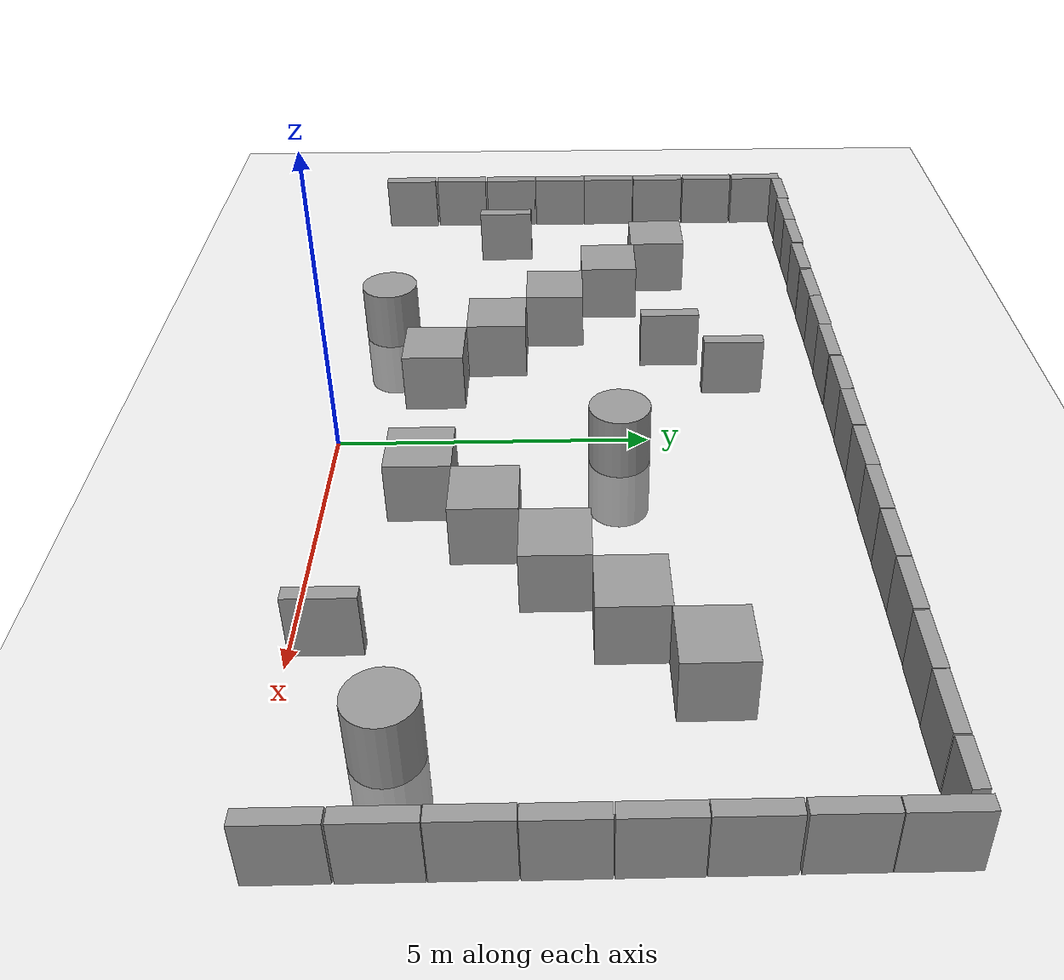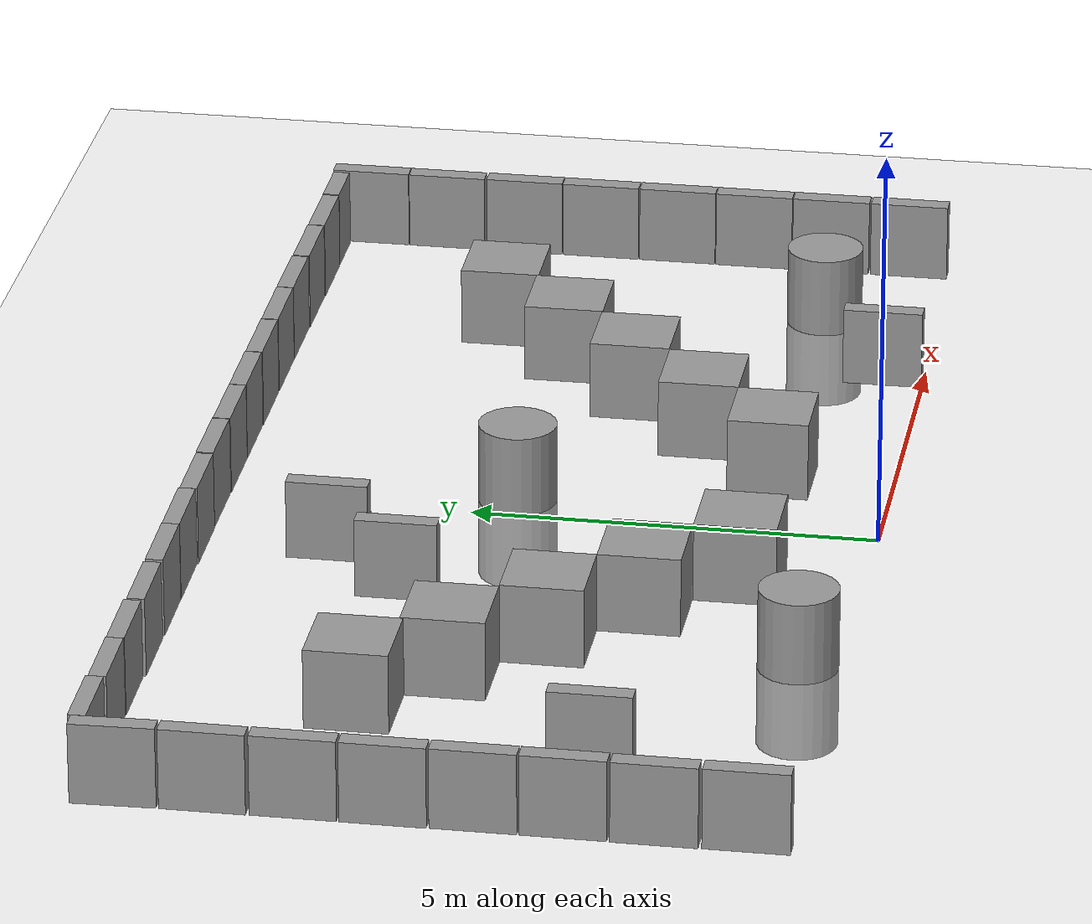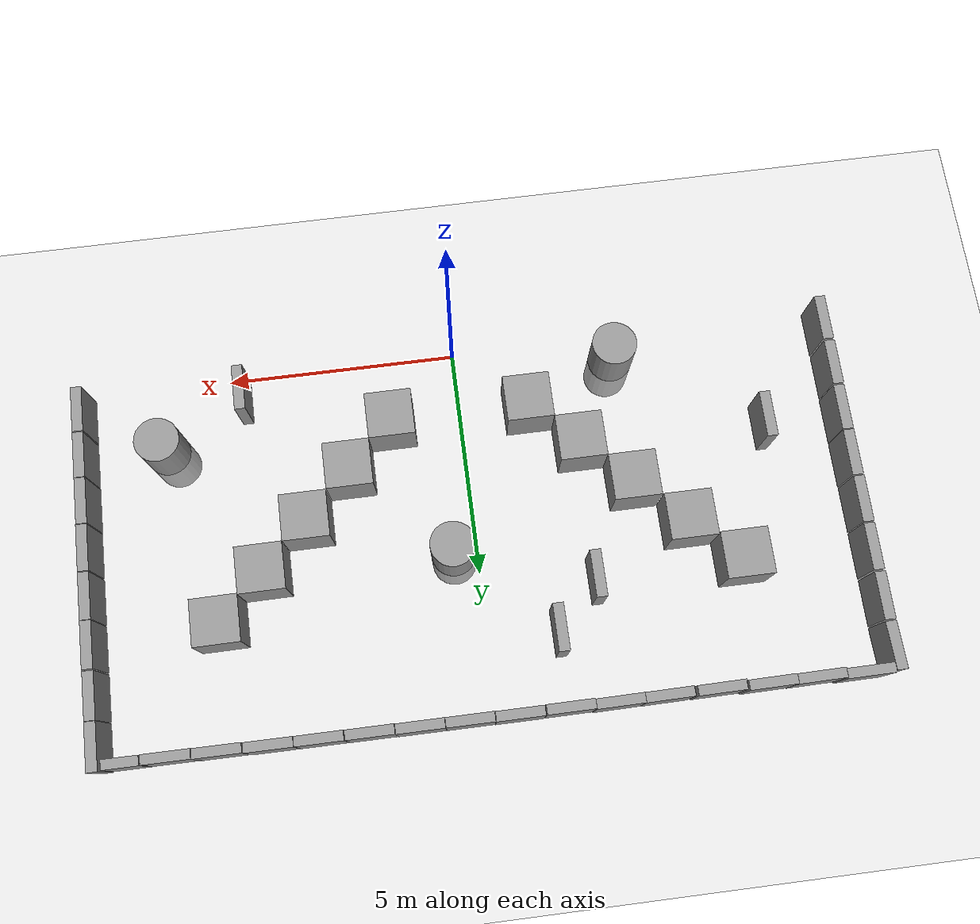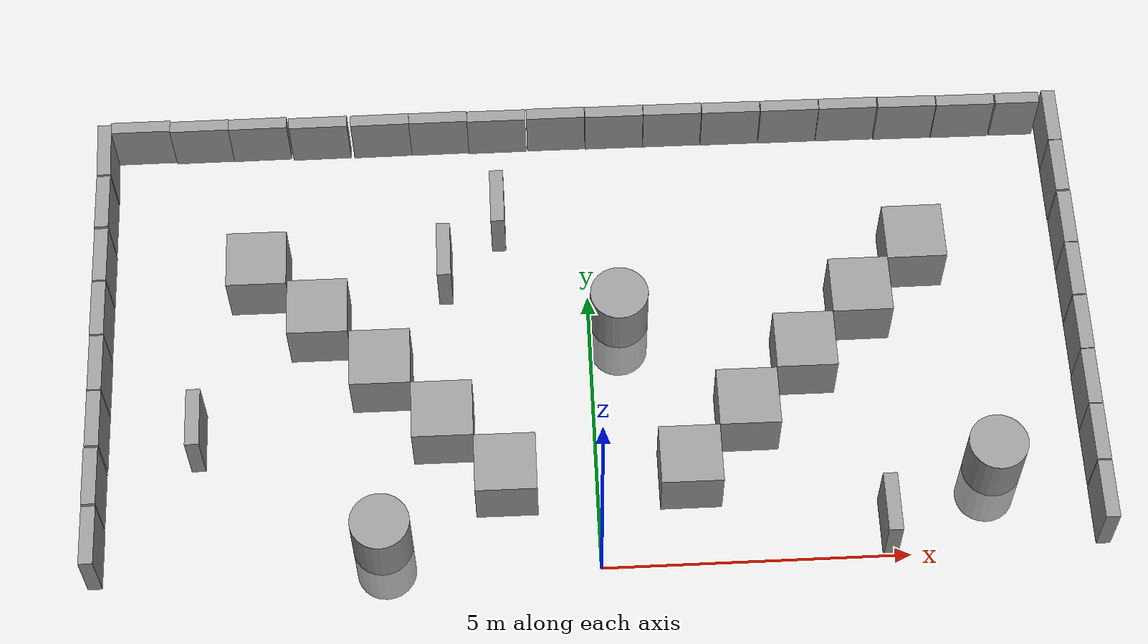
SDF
<sdf version="1.6">
 <world name="default">
  <model name="ground_plane">
   <static>1</static>
   <static>1</static>
   <link name="link">
    <collision name="collision">
     <geometry><plane><normal>0 0 1</normal><size>100 100</size></plane></geometry>
     <surface><friction><ode><mu>100</mu><mu2>50</mu2></ode></friction></surface>
    </collision>
    <visual name="visual">
     <cast_shadows>0</cast_shadows>
     <geometry><plane><normal>0 0 1</normal><size>100 100</size></plane></geometry>
     <material>
      <script><uri>file://media/materials/scripts/gazebo.material</uri><name>Gazebo/Grey</name></script>
     </material>
    </visual>
   </link>
  </model>
  <model name="unit_box_clone_3">
   <pose>-3.44384 8.11833 0.5 0 -0 0.009297</pose>
   <link name="link">
    <inertial>
     <mass>1</mass>
     <inertia>
      <ixx>0.166667</ixx>
      <ixy>0</ixy>
      <ixz>0</ixz>
      <iyy>0.166667</iyy>
      <iyz>0</iyz>
      <izz>0.166667</izz>
     </inertia>
    </inertial>
    <collision name="collision"><geometry><box><size>1 0.210541 1</size></box></geometry></collision>
    <visual name="visual">
     <geometry><box><size>1 0.210541 1</size></box></geometry>
     <material>
      <script><name>Gazebo/Grey</name><uri>file://media/materials/scripts/gazebo.material</uri></script>
     </material>
    </visual>
   </link>
  </model>
  <model name="unit_box_clone_4">
   <pose>-2.4437 8.12264 0.500001 0 2e-06 0.008359</pose>
   <link name="link">
    <inertial>
     <mass>1</mass>
     <inertia>
      <ixx>0.166667</ixx>
      <ixy>0</ixy>
      <ixz>0</ixz>
      <iyy>0.166667</iyy>
      <iyz>0</iyz>
      <izz>0.166667</izz>
     </inertia>
    </inertial>
    <collision name="collision"><geometry><box><size>1 0.210541 1</size></box></geometry></collision>
    <visual name="visual">
     <geometry><box><size>1 0.210541 1</size></box></geometry>
     <material>
      <script><name>Gazebo/Grey</name><uri>file://media/materials/scripts/gazebo.material</uri></script>
     </material>
    </visual>
   </link>
  </model>
  <model name="unit_box_clone_5">
   <pose>-1.4431 8.11185 0.499996 -1e-06 -9e-06 0.003021</pose>
   <link name="link">
    <inertial>
     <mass>1</mass>
     <inertia>
      <ixx>0.166667</ixx>
      <ixy>0</ixy>
      <ixz>0</ixz>
      <iyy>0.166667</iyy>
      <iyz>0</iyz>
      <izz>0.166667</izz>
     </inertia>
    </inertial>
    <collision name="collision"><geometry><box><size>1 0.210541 1</size></box></geometry></collision>
    <visual name="visual">
     <geometry><box><size>1 0.210541 1</size></box></geometry>
     <material>
      <script><name>Gazebo/Grey</name><uri>file://media/materials/scripts/gazebo.material</uri></script>
     </material>
    </visual>
   </link>
  </model>
  <model name="unit_box_clone_6">
   <pose>-0.418678 8.11842 0.5 0 -0 0.000187</pose>
   <link name="link">
    <inertial>
     <mass>1</mass>
     <inertia>
      <ixx>0.166667</ixx>
      <ixy>0</ixy>
      <ixz>0</ixz>
      <iyy>0.166667</iyy>
      <iyz>0</iyz>
      <izz>0.166667</izz>
     </inertia>
    </inertial>
    <collision name="collision"><geometry><box><size>1 0.210541 1</size></box></geometry></collision>
    <visual name="visual">
     <geometry><box><size>1 0.210541 1</size></box></geometry>
     <material>
      <script><name>Gazebo/Grey</name><uri>file://media/materials/scripts/gazebo.material</uri></script>
     </material>
    </visual>
   </link>
  </model>
  <model name="unit_box_clone_7">
   <pose>0.592841 8.11129 0.5 0 -0 0.000187</pose>
   <link name="link">
    <inertial>
     <mass>1</mass>
     <inertia>
      <ixx>0.166667</ixx>
      <ixy>0</ixy>
      <ixz>0</ixz>
      <iyy>0.166667</iyy>
      <iyz>0</iyz>
      <izz>0.166667</izz>
     </inertia>
    </inertial>
    <collision name="collision"><geometry><box><size>1 0.210541 1</size></box></geometry></collision>
    <visual name="visual">
     <geometry><box><size>1 0.210541 1</size></box></geometry>
     <material>
      <script><name>Gazebo/Grey</name><uri>file://media/materials/scripts/gazebo.material</uri></script>
     </material>
    </visual>
   </link>
  </model>
  <model name="unit_box_clone_8">
   <pose>1.60044 8.1098 0.5 0 -0 0.000187</pose>
   <link name="link">
    <inertial>
     <mass>1</mass>
     <inertia>
      <ixx>0.166667</ixx>
      <ixy>0</ixy>
      <ixz>0</ixz>
      <iyy>0.166667</iyy>
      <iyz>0</iyz>
      <izz>0.166667</izz>
     </inertia>
    </inertial>
    <collision name="collision"><geometry><box><size>1 0.210541 1</size></box></geometry></collision>
    <visual name="visual">
     <geometry><box><size>1 0.210541 1</size></box></geometry>
     <material>
      <script><name>Gazebo/Grey</name><uri>file://media/materials/scripts/gazebo.material</uri></script>
     </material>
    </visual>
   </link>
  </model>
  <model name="unit_box_clone_9">
   <pose>2.60988 8.10261 0.5 0 -0 0.000187</pose>
   <link name="link">
    <inertial>
     <mass>1</mass>
     <inertia>
      <ixx>0.166667</ixx>
      <ixy>0</ixy>
      <ixz>0</ixz>
      <iyy>0.166667</iyy>
      <iyz>0</iyz>
      <izz>0.166667</izz>
     </inertia>
    </inertial>
    <collision name="collision"><geometry><box><size>1 0.210541 1</size></box></geometry></collision>
    <visual name="visual">
     <geometry><box><size>1 0.210541 1</size></box></geometry>
     <material>
      <script><name>Gazebo/Grey</name><uri>file://media/materials/scripts/gazebo.material</uri></script>
     </material>
    </visual>
   </link>
  </model>
  <model name="unit_box_clone_10">
   <pose>3.62649 8.09902 0.5 0 -0 0.000187</pose>
   <link name="link">
    <inertial>
     <mass>1</mass>
     <inertia>
      <ixx>0.166667</ixx>
      <ixy>0</ixy>
      <ixz>0</ixz>
      <iyy>0.166667</iyy>
      <iyz>0</iyz>
      <izz>0.166667</izz>
     </inertia>
    </inertial>
    <collision name="collision"><geometry><box><size>1 0.210541 1</size></box></geometry></collision>
    <visual name="visual">
     <geometry><box><size>1 0.210541 1</size></box></geometry>
     <material>
      <script><name>Gazebo/Grey</name><uri>file://media/materials/scripts/gazebo.material</uri></script>
     </material>
    </visual>
   </link>
  </model>
  <model name="unit_box_clone_11">
   <pose>4.63311 8.09542 0.5 -0 -0 -0.003178</pose>
   <link name="link">
    <inertial>
     <mass>1</mass>
     <inertia>
      <ixx>0.166667</ixx>
      <ixy>0</ixy>
      <ixz>0</ixz>
      <iyy>0.166667</iyy>
      <iyz>0</iyz>
      <izz>0.166667</izz>
     </inertia>
    </inertial>
    <collision name="collision"><geometry><box><size>1 0.210541 1</size></box></geometry></collision>
    <visual name="visual">
     <geometry><box><size>1 0.210541 1</size></box></geometry>
     <material>
      <script><name>Gazebo/Grey</name><uri>file://media/materials/scripts/gazebo.material</uri></script>
     </material>
    </visual>
   </link>
  </model>
  <model name="unit_box_0_clone_0">
   <pose>8.11279 6.68232 0.5 0 -0 0.000127</pose>
   <link name="link">
    <inertial>
     <mass>1</mass>
     <inertia>
      <ixx>0.166667</ixx>
      <ixy>0</ixy>
      <ixz>0</ixz>
      <iyy>0.166667</iyy>
      <iyz>0</iyz>
      <izz>0.166667</izz>
     </inertia>
    </inertial>
    <collision name="collision"><geometry><box><size>0.230819 1 1</size></box></geometry></collision>
    <visual name="visual">
     <geometry><box><size>0.230819 1 1</size></box></geometry>
     <material>
      <script><name>Gazebo/Grey</name><uri>file://media/materials/scripts/gazebo.material</uri></script>
     </material>
    </visual>
   </link>
  </model>
  <model name="unit_box_0_clone_1">
   <pose>8.11915 5.6517 0.5 0 -0 0.000127</pose>
   <link name="link">
    <inertial>
     <mass>1</mass>
     <inertia>
      <ixx>0.166667</ixx>
      <ixy>0</ixy>
      <ixz>0</ixz>
      <iyy>0.166667</iyy>
      <iyz>0</iyz>
      <izz>0.166667</izz>
     </inertia>
    </inertial>
    <collision name="collision"><geometry><box><size>0.230819 1 1</size></box></geometry></collision>
    <visual name="visual">
     <geometry><box><size>0.230819 1 1</size></box></geometry>
     <material>
      <script><name>Gazebo/Grey</name><uri>file://media/materials/scripts/gazebo.material</uri></script>
     </material>
    </visual>
   </link>
  </model>
  <model name="unit_box_0_clone_2">
   <pose>8.11914 4.64017 0.5 0 -0 0.000127</pose>
   <link name="link">
    <inertial>
     <mass>1</mass>
     <inertia>
      <ixx>0.166667</ixx>
      <ixy>0</ixy>
      <ixz>0</ixz>
      <iyy>0.166667</iyy>
      <iyz>0</iyz>
      <izz>0.166667</izz>
     </inertia>
    </inertial>
    <collision name="collision"><geometry><box><size>0.230819 1 1</size></box></geometry></collision>
    <visual name="visual">
     <geometry><box><size>0.230819 1 1</size></box></geometry>
     <material>
      <script><name>Gazebo/Grey</name><uri>file://media/materials/scripts/gazebo.material</uri></script>
     </material>
    </visual>
   </link>
  </model>
  <model name="unit_box_0_clone_3">
   <pose>8.11914 3.62227 0.5 0 -0 0.000127</pose>
   <link name="link">
    <inertial>
     <mass>1</mass>
     <inertia>
      <ixx>0.166667</ixx>
      <ixy>0</ixy>
      <ixz>0</ixz>
      <iyy>0.166667</iyy>
      <iyz>0</iyz>
      <izz>0.166667</izz>
     </inertia>
    </inertial>
    <collision name="collision"><geometry><box><size>0.230819 1 1</size></box></geometry></collision>
    <visual name="visual">
     <geometry><box><size>0.230819 1 1</size></box></geometry>
     <material>
      <script><name>Gazebo/Grey</name><uri>file://media/materials/scripts/gazebo.material</uri></script>
     </material>
    </visual>
   </link>
  </model>
  <model name="unit_box_0_clone_4">
   <pose>8.11278 2.61074 0.5 0 -0 0.000127</pose>
   <link name="link">
    <inertial>
     <mass>1</mass>
     <inertia>
      <ixx>0.166667</ixx>
      <ixy>0</ixy>
      <ixz>0</ixz>
      <iyy>0.166667</iyy>
      <iyz>0</iyz>
      <izz>0.166667</izz>
     </inertia>
    </inertial>
    <collision name="collision"><geometry><box><size>0.230819 1 1</size></box></geometry></collision>
    <visual name="visual">
     <geometry><box><size>0.230819 1 1</size></box></geometry>
     <material>
      <script><name>Gazebo/Grey</name><uri>file://media/materials/scripts/gazebo.material</uri></script>
     </material>
    </visual>
   </link>
  </model>
  <model name="unit_box_0_clone_5">
   <pose>8.11277 1.5992 0.5 0 -0 0.000127</pose>
   <link name="link">
    <inertial>
     <mass>1</mass>
     <inertia>
      <ixx>0.166667</ixx>
      <ixy>0</ixy>
      <ixz>0</ixz>
      <iyy>0.166667</iyy>
      <iyz>0</iyz>
      <izz>0.166667</izz>
     </inertia>
    </inertial>
    <collision name="collision"><geometry><box><size>0.230819 1 1</size></box></geometry></collision>
    <visual name="visual">
     <geometry><box><size>0.230819 1 1</size></box></geometry>
     <material>
      <script><name>Gazebo/Grey</name><uri>file://media/materials/scripts/gazebo.material</uri></script>
     </material>
    </visual>
   </link>
  </model>
  <model name="unit_box_0_clone_6">
   <pose>8.11277 0.574943 0.5 0 -0 0.000127</pose>
   <link name="link">
    <inertial>
     <mass>1</mass>
     <inertia>
      <ixx>0.166667</ixx>
      <ixy>0</ixy>
      <ixz>0</ixz>
      <iyy>0.166667</iyy>
      <iyz>0</iyz>
      <izz>0.166667</izz>
     </inertia>
    </inertial>
    <collision name="collision"><geometry><box><size>0.230819 1 1</size></box></geometry></collision>
    <visual name="visual">
     <geometry><box><size>0.230819 1 1</size></box></geometry>
     <material>
      <script><name>Gazebo/Grey</name><uri>file://media/materials/scripts/gazebo.material</uri></script>
     </material>
    </visual>
   </link>
  </model>
  <model name="unit_box_0_clone_4_clone">
   <pose>-8.14591 7.71693 0.499549 0 -0 0.031457</pose>
   <link name="link">
    <inertial>
     <mass>1</mass>
     <inertia>
      <ixx>0.166667</ixx>
      <ixy>0</ixy>
      <ixz>0</ixz>
      <iyy>0.166667</iyy>
      <iyz>0</iyz>
      <izz>0.166667</izz>
     </inertia>
    </inertial>
    <collision name="collision"><geometry><box><size>0.230819 1 1</size></box></geometry></collision>
    <visual name="visual">
     <geometry><box><size>0.230819 1 1</size></box></geometry>
     <material>
      <script><name>Gazebo/Grey</name><uri>file://media/materials/scripts/gazebo.material</uri></script>
     </material>
    </visual>
   </link>
  </model>
  <model name="unit_box_0_clone_4_clone_0">
   <pose>-8.13281 6.68715 0.5 0 -0 0.000127</pose>
   <link name="link">
    <inertial>
     <mass>1</mass>
     <inertia>
      <ixx>0.166667</ixx>
      <ixy>0</ixy>
      <ixz>0</ixz>
      <iyy>0.166667</iyy>
      <iyz>0</iyz>
      <izz>0.166667</izz>
     </inertia>
    </inertial>
    <collision name="collision"><geometry><box><size>0.230819 1 1</size></box></geometry></collision>
    <visual name="visual">
     <geometry><box><size>0.230819 1 1</size></box></geometry>
     <material>
      <script><name>Gazebo/Grey</name><uri>file://media/materials/scripts/gazebo.material</uri></script>
     </material>
    </visual>
   </link>
  </model>
  <model name="unit_box_0_clone_4_clone_1">
   <pose>-8.12606 5.64723 0.5 0 -0 0.000127</pose>
   <link name="link">
    <inertial>
     <mass>1</mass>
     <inertia>
      <ixx>0.166667</ixx>
      <ixy>0</ixy>
      <ixz>0</ixz>
      <iyy>0.166667</iyy>
      <iyz>0</iyz>
      <izz>0.166667</izz>
     </inertia>
    </inertial>
    <collision name="collision"><geometry><box><size>0.230819 1 1</size></box></geometry></collision>
    <visual name="visual">
     <geometry><box><size>0.230819 1 1</size></box></geometry>
     <material>
      <script><name>Gazebo/Grey</name><uri>file://media/materials/scripts/gazebo.material</uri></script>
     </material>
    </visual>
   </link>
  </model>
  <model name="unit_box_0_clone_4_clone_2">
   <pose>-8.12607 4.62081 0.5 0 -0 0.000127</pose>
   <link name="link">
    <inertial>
     <mass>1</mass>
     <inertia>
      <ixx>0.166667</ixx>
      <ixy>0</ixy>
      <ixz>0</ixz>
      <iyy>0.166667</iyy>
      <iyz>0</iyz>
      <izz>0.166667</izz>
     </inertia>
    </inertial>
    <collision name="collision"><geometry><box><size>0.230819 1 1</size></box></geometry></collision>
    <visual name="visual">
     <geometry><box><size>0.230819 1 1</size></box></geometry>
     <material>
      <script><name>Gazebo/Grey</name><uri>file://media/materials/scripts/gazebo.material</uri></script>
     </material>
    </visual>
   </link>
  </model>
  <model name="unit_box_0_clone_4_clone_3">
   <pose>-8.11932 3.59439 0.5 0 -0 0.000127</pose>
   <link name="link">
    <inertial>
     <mass>1</mass>
     <inertia>
      <ixx>0.166667</ixx>
      <ixy>0</ixy>
      <ixz>0</ixz>
      <iyy>0.166667</iyy>
      <iyz>0</iyz>
      <izz>0.166667</izz>
     </inertia>
    </inertial>
    <collision name="collision"><geometry><box><size>0.230819 1 1</size></box></geometry></collision>
    <visual name="visual">
     <geometry><box><size>0.230819 1 1</size></box></geometry>
     <material>
      <script><name>Gazebo/Grey</name><uri>file://media/materials/scripts/gazebo.material</uri></script>
     </material>
    </visual>
   </link>
  </model>
  <model name="unit_box_0_clone_4_clone_4">
   <pose>-8.11932 2.57473 0.5 0 -0 0.000127</pose>
   <link name="link">
    <inertial>
     <mass>1</mass>
     <inertia>
      <ixx>0.166667</ixx>
      <ixy>0</ixy>
      <ixz>0</ixz>
      <iyy>0.166667</iyy>
      <iyz>0</iyz>
      <izz>0.166667</izz>
     </inertia>
    </inertial>
    <collision name="collision"><geometry><box><size>0.230819 1 1</size></box></geometry></collision>
    <visual name="visual">
     <geometry><box><size>0.230819 1 1</size></box></geometry>
     <material>
      <script><name>Gazebo/Grey</name><uri>file://media/materials/scripts/gazebo.material</uri></script>
     </material>
    </visual>
   </link>
  </model>
  <model name="unit_box_0_clone_4_clone_5">
   <pose>-8.12608 1.54156 0.5 0 -0 0.000127</pose>
   <link name="link">
    <inertial>
     <mass>1</mass>
     <inertia>
      <ixx>0.166667</ixx>
      <ixy>0</ixy>
      <ixz>0</ixz>
      <iyy>0.166667</iyy>
      <iyz>0</iyz>
      <izz>0.166667</izz>
     </inertia>
    </inertial>
    <collision name="collision"><geometry><box><size>0.230819 1 1</size></box></geometry></collision>
    <visual name="visual">
     <geometry><box><size>0.230819 1 1</size></box></geometry>
     <material>
      <script><name>Gazebo/Grey</name><uri>file://media/materials/scripts/gazebo.material</uri></script>
     </material>
    </visual>
   </link>
  </model>
  <model name="unit_box_0_clone_4_clone_6">
   <pose>-8.11933 0.501635 0.5 0 -0 0.000127</pose>
   <link name="link">
    <inertial>
     <mass>1</mass>
     <inertia>
      <ixx>0.166667</ixx>
      <ixy>0</ixy>
      <ixz>0</ixz>
      <iyy>0.166667</iyy>
      <iyz>0</iyz>
      <izz>0.166667</izz>
     </inertia>
    </inertial>
    <collision name="collision"><geometry><box><size>0.230819 1 1</size></box></geometry></collision>
    <visual name="visual">
     <geometry><box><size>0.230819 1 1</size></box></geometry>
     <material>
      <script><name>Gazebo/Grey</name><uri>file://media/materials/scripts/gazebo.material</uri></script>
     </material>
    </visual>
   </link>
  </model>
  <model name="unit_box_0_clone_0_clone">
   <pose>8.11438 7.69322 0.5 0 -0 0.000167</pose>
   <link name="link">
    <inertial>
     <mass>1</mass>
     <inertia>
      <ixx>0.166667</ixx>
      <ixy>0</ixy>
      <ixz>0</ixz>
      <iyy>0.166667</iyy>
      <iyz>0</iyz>
      <izz>0.166667</izz>
     </inertia>
    </inertial>
    <collision name="collision"><geometry><box><size>0.230819 1 1</size></box></geometry></collision>
    <visual name="visual">
     <geometry><box><size>0.230819 1 1</size></box></geometry>
     <material>
      <script><name>Gazebo/Grey</name><uri>file://media/materials/scripts/gazebo.material</uri></script>
     </material>
    </visual>
   </link>
  </model>
  <model name="unit_box_clone_11_clone">
   <pose>5.65439 8.08332 0.5 -0 -0 -0.003121</pose>
   <link name="link">
    <inertial>
     <mass>1</mass>
     <inertia>
      <ixx>0.166667</ixx>
      <ixy>0</ixy>
      <ixz>0</ixz>
      <iyy>0.166667</iyy>
      <iyz>0</iyz>
      <izz>0.166667</izz>
     </inertia>
    </inertial>
    <collision name="collision"><geometry><box><size>1 0.210541 1</size></box></geometry></collision>
    <visual name="visual">
     <geometry><box><size>1 0.210541 1</size></box></geometry>
     <material>
      <script><name>Gazebo/Grey</name><uri>file://media/materials/scripts/gazebo.material</uri></script>
     </material>
    </visual>
   </link>
  </model>
  <model name="unit_box_clone_11_clone_0">
   <pose>6.66439 8.07321 0.5 0 0 -0.003043</pose>
   <link name="link">
    <inertial>
     <mass>1</mass>
     <inertia>
      <ixx>0.166667</ixx>
      <ixy>0</ixy>
      <ixz>0</ixz>
      <iyy>0.166667</iyy>
      <iyz>0</iyz>
      <izz>0.166667</izz>
     </inertia>
    </inertial>
    <collision name="collision"><geometry><box><size>1 0.210541 1</size></box></geometry></collision>
    <visual name="visual">
     <geometry><box><size>1 0.210541 1</size></box></geometry>
     <material>
      <script><name>Gazebo/Grey</name><uri>file://media/materials/scripts/gazebo.material</uri></script>
     </material>
    </visual>
   </link>
  </model>
  <model name="unit_box_clone_11_clone_1_clone">
   <pose>7.56437 8.07323 0.499997 2e-06 -7e-06 -0.003734</pose>
   <link name="link">
    <inertial>
     <mass>1</mass>
     <inertia>
      <ixx>0.166667</ixx>
      <ixy>0</ixy>
      <ixz>0</ixz>
      <iyy>0.166667</iyy>
      <iyz>0</iyz>
      <izz>0.166667</izz>
     </inertia>
    </inertial>
    <collision name="collision"><geometry><box><size>0.750223 0.210541 1</size></box></geometry></collision>
    <visual name="visual">
     <geometry><box><size>0.750223 0.210541 1</size></box></geometry>
     <material>
      <script><name>Gazebo/Grey</name><uri>file://media/materials/scripts/gazebo.material</uri></script>
     </material>
    </visual>
   </link>
  </model>
  <model name="unit_box_clone_12">
   <pose>-4.50592 4.49343 0.499995 0 1e-05 2e-06</pose>
   <link name="link">
    <inertial>
     <mass>1</mass>
     <inertia>
      <ixx>0.166667</ixx>
      <ixy>0</ixy>
      <ixz>0</ixz>
      <iyy>0.166667</iyy>
      <iyz>0</iyz>
      <izz>0.166667</izz>
     </inertia>
    </inertial>
    <collision name="collision"><geometry><box><size>1 1 1</size></box></geometry></collision>
    <visual name="visual">
     <geometry><box><size>1 1 1</size></box></geometry>
     <material>
      <script><name>Gazebo/Grey</name><uri>file://media/materials/scripts/gazebo.material</uri></script>
     </material>
    </visual>
   </link>
  </model>
  <model name="unit_box_clone_15">
   <pose>-1.48348 1.49238 0.499995 1e-05 -0 2e-06</pose>
   <link name="link">
    <inertial>
     <mass>1</mass>
     <inertia>
      <ixx>0.166667</ixx>
      <ixy>0</ixy>
      <ixz>0</ixz>
      <iyy>0.166667</iyy>
      <iyz>0</iyz>
      <izz>0.166667</izz>
     </inertia>
    </inertial>
    <collision name="collision"><geometry><box><size>1 1 1</size></box></geometry></collision>
    <visual name="visual">
     <geometry><box><size>1 1 1</size></box></geometry>
     <material>
      <script><name>Gazebo/Grey</name><uri>file://media/materials/scripts/gazebo.material</uri></script>
     </material>
    </visual>
   </link>
  </model>
  <model name="unit_box_clone_14">
   <pose>-2.47914 2.49785 0.499995 -1e-05 0 0.000563</pose>
   <link name="link">
    <inertial>
     <mass>1</mass>
     <inertia>
      <ixx>0.166667</ixx>
      <ixy>0</ixy>
      <ixz>0</ixz>
      <iyy>0.166667</iyy>
      <iyz>0</iyz>
      <izz>0.166667</izz>
     </inertia>
    </inertial>
    <collision name="collision"><geometry><box><size>1 1 1</size></box></geometry></collision>
    <visual name="visual">
     <geometry><box><size>1 1 1</size></box></geometry>
     <material>
      <script><name>Gazebo/Grey</name><uri>file://media/materials/scripts/gazebo.material</uri></script>
     </material>
    </visual>
   </link>
  </model>
  <model name="unit_box_clone_13">
   <pose>-3.47823 3.4973 0.499995 1e-05 -0 0.000526</pose>
   <link name="link">
    <inertial>
     <mass>1</mass>
     <inertia>
      <ixx>0.166667</ixx>
      <ixy>0</ixy>
      <ixz>0</ixz>
      <iyy>0.166667</iyy>
      <iyz>0</iyz>
      <izz>0.166667</izz>
     </inertia>
    </inertial>
    <collision name="collision"><geometry><box><size>1 1 1</size></box></geometry></collision>
    <visual name="visual">
     <geometry><box><size>1 1 1</size></box></geometry>
     <material>
      <script><name>Gazebo/Grey</name><uri>file://media/materials/scripts/gazebo.material</uri></script>
     </material>
    </visual>
   </link>
  </model>
  <model name="unit_box_clone_21">
   <pose>1.50378 1.50084 0.499995 0 1e-05 0.00104</pose>
   <link name="link">
    <inertial>
     <mass>1</mass>
     <inertia>
      <ixx>0.166667</ixx>
      <ixy>0</ixy>
      <ixz>0</ixz>
      <iyy>0.166667</iyy>
      <iyz>0</iyz>
      <izz>0.166667</izz>
     </inertia>
    </inertial>
    <collision name="collision"><geometry><box><size>1 1 1</size></box></geometry></collision>
    <visual name="visual">
     <geometry><box><size>1 1 1</size></box></geometry>
     <material>
      <script><name>Gazebo/Grey</name><uri>file://media/materials/scripts/gazebo.material</uri></script>
     </material>
    </visual>
   </link>
  </model>
  <model name="unit_box_clone_22">
   <pose>2.5028 2.49916 0.499995 0 1e-05 0.000941</pose>
   <link name="link">
    <inertial>
     <mass>1</mass>
     <inertia>
      <ixx>0.166667</ixx>
      <ixy>0</ixy>
      <ixz>0</ixz>
      <iyy>0.166667</iyy>
      <iyz>0</iyz>
      <izz>0.166667</izz>
     </inertia>
    </inertial>
    <collision name="collision"><geometry><box><size>1 1 1</size></box></geometry></collision>
    <visual name="visual">
     <geometry><box><size>1 1 1</size></box></geometry>
     <material>
      <script><name>Gazebo/Grey</name><uri>file://media/materials/scripts/gazebo.material</uri></script>
     </material>
    </visual>
   </link>
  </model>
  <model name="unit_box_clone_23">
   <pose>3.51093 3.50762 0.499995 0 1e-05 2e-06</pose>
   <link name="link">
    <inertial>
     <mass>1</mass>
     <inertia>
      <ixx>0.166667</ixx>
      <ixy>0</ixy>
      <ixz>0</ixz>
      <iyy>0.166667</iyy>
      <iyz>0</iyz>
      <izz>0.166667</izz>
     </inertia>
    </inertial>
    <collision name="collision"><geometry><box><size>1 1 1</size></box></geometry></collision>
    <visual name="visual">
     <geometry><box><size>1 1 1</size></box></geometry>
     <material>
      <script><name>Gazebo/Grey</name><uri>file://media/materials/scripts/gazebo.material</uri></script>
     </material>
    </visual>
   </link>
  </model>
  <model name="unit_box_clone_24">
   <pose>4.51534 4.5023 0.499995 0 -1e-05 0.005159</pose>
   <link name="link">
    <inertial>
     <mass>1</mass>
     <inertia>
      <ixx>0.166667</ixx>
      <ixy>0</ixy>
      <ixz>0</ixz>
      <iyy>0.166667</iyy>
      <iyz>0</iyz>
      <izz>0.166667</izz>
     </inertia>
    </inertial>
    <collision name="collision"><geometry><box><size>1 1 1</size></box></geometry></collision>
    <visual name="visual">
     <geometry><box><size>1 1 1</size></box></geometry>
     <material>
      <script><name>Gazebo/Grey</name><uri>file://media/materials/scripts/gazebo.material</uri></script>
     </material>
    </visual>
   </link>
  </model>
  <model name="unit_box_clone_25">
   <pose>5.51013 5.48174 0.499995 -1e-05 0 0.00558</pose>
   <link name="link">
    <inertial>
     <mass>1</mass>
     <inertia>
      <ixx>0.166667</ixx>
      <ixy>0</ixy>
      <ixz>0</ixz>
      <iyy>0.166667</iyy>
      <iyz>0</iyz>
      <izz>0.166667</izz>
     </inertia>
    </inertial>
    <collision name="collision"><geometry><box><size>1 1 1</size></box></geometry></collision>
    <visual name="visual">
     <geometry><box><size>1 1 1</size></box></geometry>
     <material>
      <script><name>Gazebo/Grey</name><uri>file://media/materials/scripts/gazebo.material</uri></script>
     </material>
    </visual>
   </link>
  </model>
  <model name="unit_cylinder_153_clone_clone_5_clone_clone_13_clone_0_clone_29_clone_32_clone_0_clone_4_clone_46_clone_42_clone_clone">
   <static>1</static>
   <pose>0.5058 4.51041 0 0 -0 0</pose>
   <link name="link">
    <inertial>
     <mass>1</mass>
     <inertia><ixx>0.145833</ixx><ixy>0</ixy><ixz>0</ixz><iyy>0.145833</iyy><iyz>0</iyz><izz>0.125</izz></inertia>
    </inertial>
    <collision name="collision">
     <geometry><cylinder><radius>0.484115</radius><length>2.01101</length></cylinder></geometry>
    </collision>
    <visual name="visual">
     <geometry><cylinder><radius>0.484115</radius><length>2.01101</length></cylinder></geometry>
     <material>
      <script><name>Gazebo/Grey</name><uri>file://media/materials/scripts/gazebo.material</uri></script>
     </material>
    </visual>
   </link>
  </model>
  <model name="unit_cylinder_153_clone_clone_5_clone_clone_13_clone_0_clone_29_clone_32_clone_0_clone_4_clone_46_clone_42_clone_clone_clone_1">
   <static>1</static>
   <pose>-3.50569 0.531489 0 0 -0 0</pose>
   <link name="link">
    <inertial>
     <mass>1</mass>
     <inertia><ixx>0.145833</ixx><ixy>0</ixy><ixz>0</ixz><iyy>0.145833</iyy><iyz>0</iyz><izz>0.125</izz></inertia>
    </inertial>
    <collision name="collision">
     <geometry><cylinder><radius>0.484115</radius><length>2.01101</length></cylinder></geometry>
    </collision>
    <visual name="visual">
     <geometry><cylinder><radius>0.484115</radius><length>2.01101</length></cylinder></geometry>
     <material>
      <script><name>Gazebo/Grey</name><uri>file://media/materials/scripts/gazebo.material</uri></script>
     </material>
    </visual>
   </link>
  </model>
  <model name="unit_cylinder_153_clone_clone_5_clone_clone_13_clone_0_clone_29_clone_32_clone_0_clone_4_clone_46_clone_42_clone_clone_clone_3">
   <static>1</static>
   <pose>6.46434 1.48049 0 0 -0 0</pose>
   <link name="link">
    <inertial>
     <mass>1</mass>
     <inertia><ixx>0.145833</ixx><ixy>0</ixy><ixz>0</ixz><iyy>0.145833</iyy><iyz>0</iyz><izz>0.125</izz></inertia>
    </inertial>
    <collision name="collision">
     <geometry><cylinder><radius>0.484115</radius><length>2.01101</length></cylinder></geometry>
    </collision>
    <visual name="visual">
     <geometry><cylinder><radius>0.484115</radius><length>2.01101</length></cylinder></geometry>
     <material>
      <script><name>Gazebo/Grey</name><uri>file://media/materials/scripts/gazebo.material</uri></script>
     </material>
    </visual>
   </link>
  </model>
  <model name="unit_box_0_clone_3_clone_1">
   <pose>-2.39497 5.49231 0.5 0 -0 8.7e-05</pose>
   <link name="link">
    <inertial>
     <mass>1</mass>
     <inertia>
      <ixx>0.166667</ixx>
      <ixy>0</ixy>
      <ixz>0</ixz>
      <iyy>0.166667</iyy>
      <iyz>0</iyz>
      <izz>0.166667</izz>
     </inertia>
    </inertial>
    <collision name="collision"><geometry><box><size>0.230819 1 1</size></box></geometry></collision>
    <visual name="visual">
     <geometry><box><size>0.230819 1 1</size></box></geometry>
     <material>
      <script><name>Gazebo/Grey</name><uri>file://media/materials/scripts/gazebo.material</uri></script>
     </material>
    </visual>
   </link>
  </model>
  <model name="unit_box_0_clone_3_clone_1_clone_1">
   <pose>-1.47219 6.49811 0.5 0 -0 0.00013</pose>
   <link name="link">
    <inertial>
     <mass>1</mass>
     <inertia>
      <ixx>0.166667</ixx>
      <ixy>0</ixy>
      <ixz>0</ixz>
      <iyy>0.166667</iyy>
      <iyz>0</iyz>
      <izz>0.166667</izz>
     </inertia>
    </inertial>
    <collision name="collision"><geometry><box><size>0.230819 1 1</size></box></geometry></collision>
    <visual name="visual">
     <geometry><box><size>0.230819 1 1</size></box></geometry>
     <material>
      <script><name>Gazebo/Grey</name><uri>file://media/materials/scripts/gazebo.material</uri></script>
     </material>
    </visual>
   </link>
  </model>
  <model name="unit_box_0_clone_3_clone_1_clone_3">
   <pose>4.65867 0.508829 0.5 0 -0 8.1e-05</pose>
   <link name="link">
    <inertial>
     <mass>1</mass>
     <inertia>
      <ixx>0.166667</ixx>
      <ixy>0</ixy>
      <ixz>0</ixz>
      <iyy>0.166667</iyy>
      <iyz>0</iyz>
      <izz>0.166667</izz>
     </inertia>
    </inertial>
    <collision name="collision"><geometry><box><size>0.230819 1 1</size></box></geometry></collision>
    <visual name="visual">
     <geometry><box><size>0.230819 1 1</size></box></geometry>
     <material>
      <script><name>Gazebo/Grey</name><uri>file://media/materials/scripts/gazebo.material</uri></script>
     </material>
    </visual>
   </link>
  </model>
  <model name="unit_box_clone_3_clone">
   <pose>-4.50498 8.11674 0.5 0 -0 0.00937</pose>
   <link name="link">
    <inertial>
     <mass>1</mass>
     <inertia>
      <ixx>0.166667</ixx>
      <ixy>0</ixy>
      <ixz>0</ixz>
      <iyy>0.166667</iyy>
      <iyz>0</iyz>
      <izz>0.166667</izz>
     </inertia>
    </inertial>
    <collision name="collision"><geometry><box><size>1 0.210541 1</size></box></geometry></collision>
    <visual name="visual">
     <geometry><box><size>1 0.210541 1</size></box></geometry>
     <material>
      <script><name>Gazebo/Grey</name><uri>file://media/materials/scripts/gazebo.material</uri></script>
     </material>
    </visual>
   </link>
  </model>
  <model name="unit_box_clone_3_clone_0">
   <pose>-5.54088 8.13685 0.5 1e-06 1e-06 0.009551</pose>
   <link name="link">
    <inertial>
     <mass>1</mass>
     <inertia>
      <ixx>0.166667</ixx>
      <ixy>0</ixy>
      <ixz>0</ixz>
      <iyy>0.166667</iyy>
      <iyz>0</iyz>
      <izz>0.166667</izz>
     </inertia>
    </inertial>
    <collision name="collision"><geometry><box><size>1 0.210541 1</size></box></geometry></collision>
    <visual name="visual">
     <geometry><box><size>1 0.210541 1</size></box></geometry>
     <material>
      <script><name>Gazebo/Grey</name><uri>file://media/materials/scripts/gazebo.material</uri></script>
     </material>
    </visual>
   </link>
  </model>
  <model name="unit_box_clone_3_clone_1">
   <pose>-6.54091 8.13555 0.5 -1e-06 0 0.009551</pose>
   <link name="link">
    <inertial>
     <mass>1</mass>
     <inertia>
      <ixx>0.166667</ixx>
      <ixy>0</ixy>
      <ixz>0</ixz>
      <iyy>0.166667</iyy>
      <iyz>0</iyz>
      <izz>0.166667</izz>
     </inertia>
    </inertial>
    <collision name="collision"><geometry><box><size>1 0.210541 1</size></box></geometry></collision>
    <visual name="visual">
     <geometry><box><size>1 0.210541 1</size></box></geometry>
     <material>
      <script><name>Gazebo/Grey</name><uri>file://media/materials/scripts/gazebo.material</uri></script>
     </material>
    </visual>
   </link>
  </model>
  <model name="unit_box_clone_3_clone_2">
   <pose>-7.54148 8.15617 0.499997 -1e-06 -6e-06 0.005703</pose>
   <link name="link">
    <inertial>
     <mass>1</mass>
     <inertia>
      <ixx>0.166667</ixx>
      <ixy>0</ixy>
      <ixz>0</ixz>
      <iyy>0.166667</iyy>
      <iyz>0</iyz>
      <izz>0.166667</izz>
     </inertia>
    </inertial>
    <collision name="collision"><geometry><box><size>1 0.210541 1</size></box></geometry></collision>
    <visual name="visual">
     <geometry><box><size>1 0.210541 1</size></box></geometry>
     <material>
      <script><name>Gazebo/Grey</name><uri>file://media/materials/scripts/gazebo.material</uri></script>
     </material>
    </visual>
   </link>
  </model>
  <model name="unit_box_clone_12_clone">
   <pose>-5.52116 5.44871 0.499995 1e-05 -0 2e-06</pose>
   <link name="link">
    <inertial>
     <mass>1</mass>
     <inertia>
      <ixx>0.166667</ixx>
      <ixy>0</ixy>
      <ixz>0</ixz>
      <iyy>0.166667</iyy>
      <iyz>0</iyz>
      <izz>0.166667</izz>
     </inertia>
    </inertial>
    <collision name="collision"><geometry><box><size>1 1 1</size></box></geometry></collision>
    <visual name="visual">
     <geometry><box><size>1 1 1</size></box></geometry>
     <material>
      <script><name>Gazebo/Grey</name><uri>file://media/materials/scripts/gazebo.material</uri></script>
     </material>
    </visual>
   </link>
  </model>
  <model name="unit_box_0_clone_4_clone_7_clone_clone">
   <pose>-6.50974 2.52339 0.5 1e-06 1e-06 0.000144</pose>
   <link name="link">
    <inertial>
     <mass>1</mass>
     <inertia>
      <ixx>0.166667</ixx>
      <ixy>0</ixy>
      <ixz>0</ixz>
      <iyy>0.166667</iyy>
      <iyz>0</iyz>
      <izz>0.166667</izz>
     </inertia>
    </inertial>
    <collision name="collision"><geometry><box><size>0.230819 1 1</size></box></geometry></collision>
    <visual name="visual">
     <geometry><box><size>0.230819 1 1</size></box></geometry>
     <material>
      <script><name>Gazebo/Grey</name><uri>file://media/materials/scripts/gazebo.material</uri></script>
     </material>
    </visual>
   </link>
  </model>
 </world>
</sdf>
